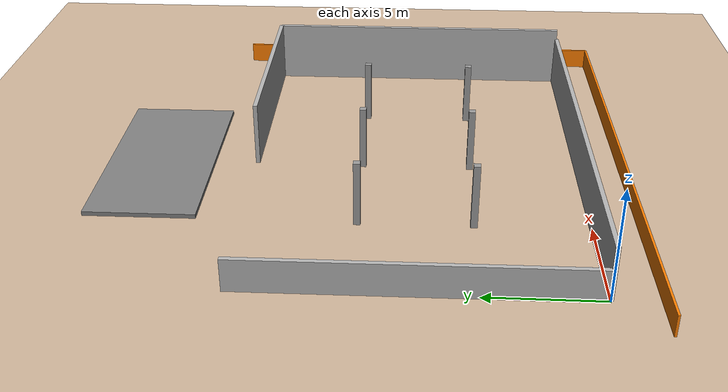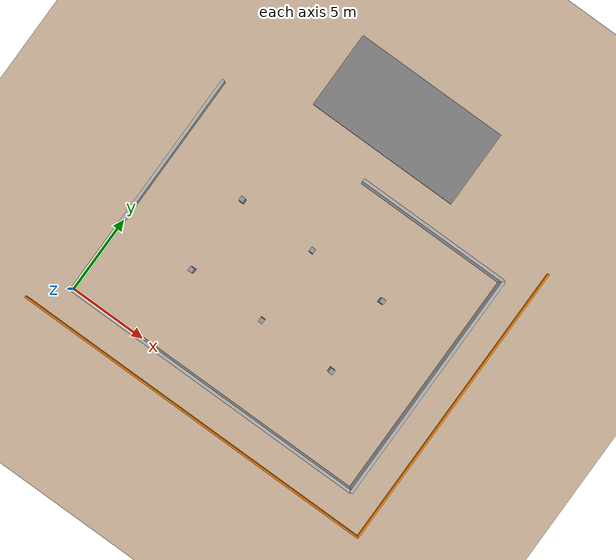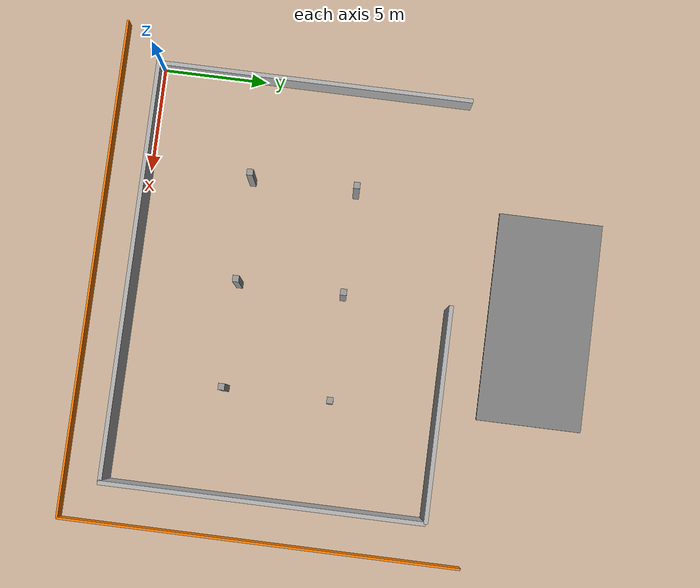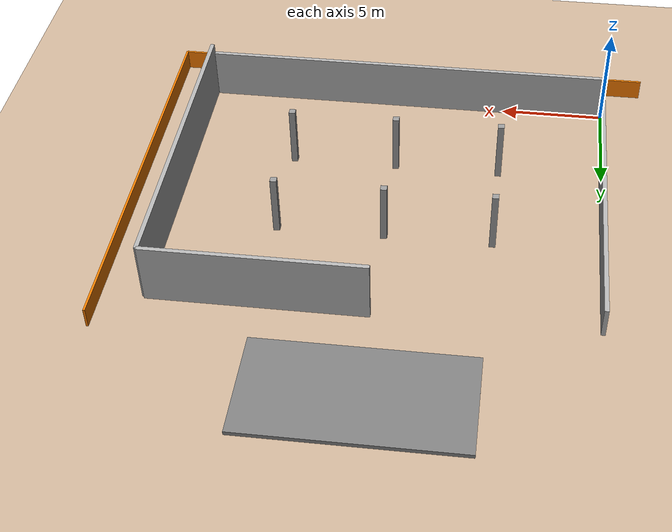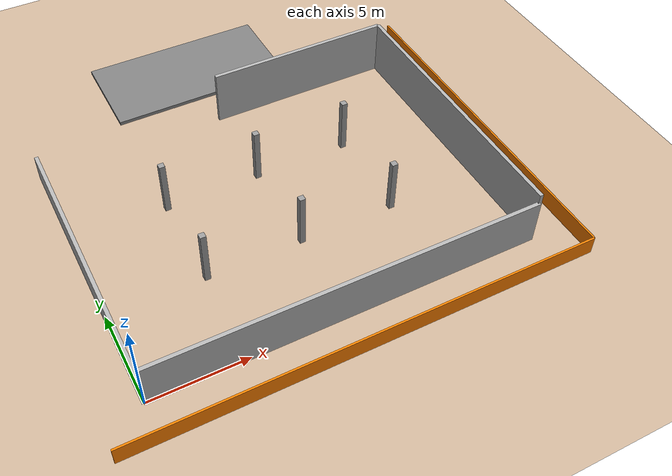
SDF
<?xml version="1.0"?>
<sdf version="1.8">
  <world name="construction_site_from_ifc">
    <plugin filename="libgz-sim-physics-system.so"
      name="gz::sim::systems::Physics">
    </plugin>

    <plugin filename="libgz-sim-sensors-system.so"
      name="gz::sim::systems::Sensors">
      <render_engine>ogre2</render_engine>
    </plugin>

    <plugin filename="libgz-sim-scene-broadcaster-system.so"
      name="gz::sim::systems::SceneBroadcaster">
    </plugin>

    <plugin filename="libgz-sim-user-commands-system.so"
      name="gz::sim::systems::UserCommands">
    </plugin>

    <plugin filename="libgz-sim-imu-system.so"
      name="gz::sim::systems::Imu">
    </plugin>
    <!-- Lighting -->
    <light type="directional" name="sun">
      <cast_shadows>true</cast_shadows>
      <pose>0 0 10 0 0 0</pose>
      <diffuse>0.8 0.8 0.8 1</diffuse>
      <specular>0.2 0.2 0.2 1</specular>
      <direction>-0.5 0.1 -0.9</direction>
    </light>

    <!-- Ground Plane -->
    <model name="ground_plane">
      <static>true</static>
      <link name="link">
        <collision name="collision">
          <geometry>
            <plane>
              <normal>0 0 1</normal>
              <size>100 100</size>
            </plane>
          </geometry>
        </collision>
        <visual name="visual">
          <geometry>
            <plane>
              <normal>0 0 1</normal>
              <size>100 100</size>
            </plane>
          </geometry>
          <material>
            <ambient>0.8 0.7 0.6 1</ambient>
            <diffuse>0.8 0.7 0.6 1</diffuse>
          </material>
        </visual>
      </link>
    </model>

    <!-- Construction Site Elements from IFC -->
    <model name="south_wall">
      <static>true</static>
      <pose>10 0 1.25 0 0 0</pose>
      <link name="link">
        <collision name="collision">
          <geometry>
            <box>
              <size>20 0.2 2.5</size>
            </box>
          </geometry>
        </collision>
        <visual name="visual">
          <geometry>
            <box>
              <size>20 0.2 2.5</size>
            </box>
          </geometry>
          <material>
            <ambient>0.6 0.6 0.6 1</ambient>
            <diffuse>0.7 0.7 0.7 1</diffuse>
          </material>
        </visual>
      </link>
    </model>

    <model name="east_wall">
      <static>true</static>
      <pose>20 7.5 1.5 0 0 0</pose>
      <link name="link">
        <collision name="collision">
          <geometry>
            <box>
              <size>0.2 15 3</size>
            </box>
          </geometry>
        </collision>
        <visual name="visual">
          <geometry>
            <box>
              <size>0.2 15 3</size>
            </box>
          </geometry>
          <material>
            <ambient>0.6 0.6 0.6 1</ambient>
            <diffuse>0.7 0.7 0.7 1</diffuse>
          </material>
        </visual>
      </link>
    </model>

    <model name="north_wall_section1">
      <static>true</static>
      <pose>15 15 1.5 0 0 0</pose>
      <link name="link">
        <collision name="collision">
          <geometry>
            <box>
              <size>10 0.2 3</size>
            </box>
          </geometry>
        </collision>
        <visual name="visual">
          <geometry>
            <box>
              <size>10 0.2 3</size>
            </box>
          </geometry>
          <material>
            <ambient>0.6 0.6 0.6 1</ambient>
            <diffuse>0.7 0.7 0.7 1</diffuse>
          </material>
        </visual>
      </link>
    </model>

    <model name="west_wall">
      <static>true</static>
      <pose>0 7.5 0.75 0 0 0</pose>
      <link name="link">
        <collision name="collision">
          <geometry>
            <box>
              <size>0.2 15 1.5</size>
            </box>
          </geometry>
        </collision>
        <visual name="visual">
          <geometry>
            <box>
              <size>0.2 15 1.5</size>
            </box>
          </geometry>
          <material>
            <ambient>0.6 0.6 0.6 1</ambient>
            <diffuse>0.7 0.7 0.7 1</diffuse>
          </material>
        </visual>
      </link>
    </model>

    <model name="column_1">
      <static>true</static>
      <pose>5 5 1.5 0 0 0</pose>
      <link name="link">
        <collision name="collision">
          <geometry>
            <box>
              <size>0.3 0.3 3</size>
            </box>
          </geometry>
        </collision>
        <visual name="visual">
          <geometry>
            <box>
              <size>0.3 0.3 3</size>
            </box>
          </geometry>
          <material>
            <ambient>0.5 0.5 0.5 1</ambient>
            <diffuse>0.6 0.6 0.6 1</diffuse>
          </material>
        </visual>
      </link>
    </model>

    <model name="column_2">
      <static>true</static>
      <pose>10 5 1.5 0 0 0</pose>
      <link name="link">
        <collision name="collision">
          <geometry>
            <box>
              <size>0.3 0.3 3</size>
            </box>
          </geometry>
        </collision>
        <visual name="visual">
          <geometry>
            <box>
              <size>0.3 0.3 3</size>
            </box>
          </geometry>
          <material>
            <ambient>0.5 0.5 0.5 1</ambient>
            <diffuse>0.6 0.6 0.6 1</diffuse>
          </material>
        </visual>
      </link>
    </model>

    <model name="column_3">
      <static>true</static>
      <pose>15 5 1.5 0 0 0</pose>
      <link name="link">
        <collision name="collision">
          <geometry>
            <box>
              <size>0.3 0.3 3</size>
            </box>
          </geometry>
        </collision>
        <visual name="visual">
          <geometry>
            <box>
              <size>0.3 0.3 3</size>
            </box>
          </geometry>
          <material>
            <ambient>0.5 0.5 0.5 1</ambient>
            <diffuse>0.6 0.6 0.6 1</diffuse>
          </material>
        </visual>
      </link>
    </model>

    <model name="column_4">
      <static>true</static>
      <pose>5 10 1.5 0 0 0</pose>
      <link name="link">
        <collision name="collision">
          <geometry>
            <box>
              <size>0.3 0.3 3</size>
            </box>
          </geometry>
        </collision>
        <visual name="visual">
          <geometry>
            <box>
              <size>0.3 0.3 3</size>
            </box>
          </geometry>
          <material>
            <ambient>0.5 0.5 0.5 1</ambient>
            <diffuse>0.6 0.6 0.6 1</diffuse>
          </material>
        </visual>
      </link>
    </model>

    <model name="column_5">
      <static>true</static>
      <pose>10 10 1.5 0 0 0</pose>
      <link name="link">
        <collision name="collision">
          <geometry>
            <box>
              <size>0.3 0.3 3</size>
            </box>
          </geometry>
        </collision>
        <visual name="visual">
          <geometry>
            <box>
              <size>0.3 0.3 3</size>
            </box>
          </geometry>
          <material>
            <ambient>0.5 0.5 0.5 1</ambient>
            <diffuse>0.6 0.6 0.6 1</diffuse>
          </material>
        </visual>
      </link>
    </model>

    <model name="column_6">
      <static>true</static>
      <pose>15 10 1.5 0 0 0</pose>
      <link name="link">
        <collision name="collision">
          <geometry>
            <box>
              <size>0.3 0.3 3</size>
            </box>
          </geometry>
        </collision>
        <visual name="visual">
          <geometry>
            <box>
              <size>0.3 0.3 3</size>
            </box>
          </geometry>
          <material>
            <ambient>0.5 0.5 0.5 1</ambient>
            <diffuse>0.6 0.6 0.6 1</diffuse>
          </material>
        </visual>
      </link>
    </model>

    <model name="barrier_1">
      <static>true</static>
      <pose>10 -2 0.5 0 0 0</pose>
      <link name="link">
        <collision name="collision">
          <geometry>
            <box>
              <size>24 0.1 1</size>
            </box>
          </geometry>
        </collision>
        <visual name="visual">
          <geometry>
            <box>
              <size>24 0.1 1</size>
            </box>
          </geometry>
          <material>
            <ambient>1.0 0.5 0.0 1</ambient>
            <diffuse>1.0 0.5 0.0 1</diffuse>
          </material>
        </visual>
      </link>
    </model>

    <model name="barrier_2">
      <static>true</static>
      <pose>22 7.5 0.5 0 0 0</pose>
      <link name="link">
        <collision name="collision">
          <geometry>
            <box>
              <size>0.1 19 1</size>
            </box>
          </geometry>
        </collision>
        <visual name="visual">
          <geometry>
            <box>
              <size>0.1 19 1</size>
            </box>
          </geometry>
          <material>
            <ambient>1.0 0.5 0.0 1</ambient>
            <diffuse>1.0 0.5 0.0 1</diffuse>
          </material>
        </visual>
      </link>
    </model>

    <model name="material_storage">
      <static>true</static>
      <pose>10 19.5 0.1 0 0 0</pose>
      <link name="link">
        <collision name="collision">
          <geometry>
            <box>
              <size>10 5 0.2</size>
            </box>
          </geometry>
        </collision>
        <visual name="visual">
          <geometry>
            <box>
              <size>10 5 0.2</size>
            </box>
          </geometry>
          <material>
            <ambient>0.4 0.4 0.4 1</ambient>
            <diffuse>0.5 0.5 0.5 1</diffuse>
          </material>
        </visual>
      </link>
    </model>

    <!-- Physics Settings -->
    <physics type="ode">
      <ode>
        <solver>
          <type>quick</type>
          <iters>50</iters>
          <sor>1.4</sor>
        </solver>
        <constraints>
          <cfm>0.0</cfm>
          <erp>0.2</erp>
          <contact_max_correcting_vel>100.0</contact_max_correcting_vel>
          <contact_surface_layer>0.001</contact_surface_layer>
        </constraints>
      </ode>
    </physics>

    <!-- Scene Settings -->
    <scene>
      <ambient>0.7 0.7 0.7 1</ambient>
      <background>0.8 0.8 1 1</background>
      <shadows>true</shadows>
    </scene>
  </world>
</sdf>
